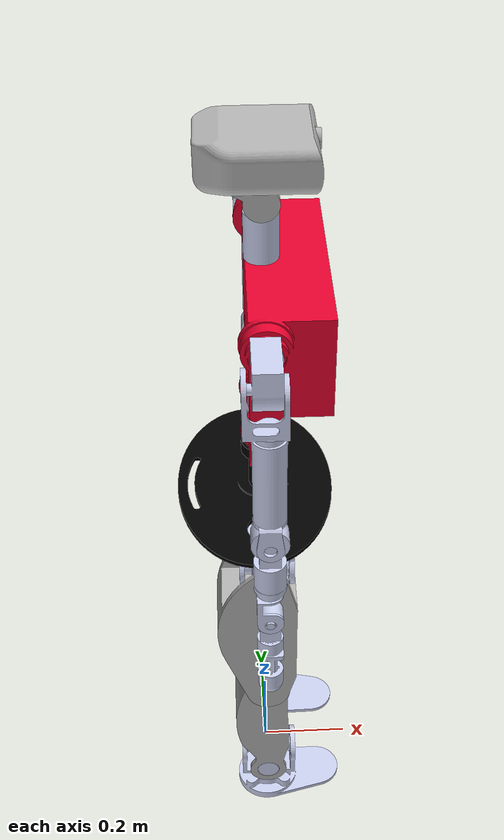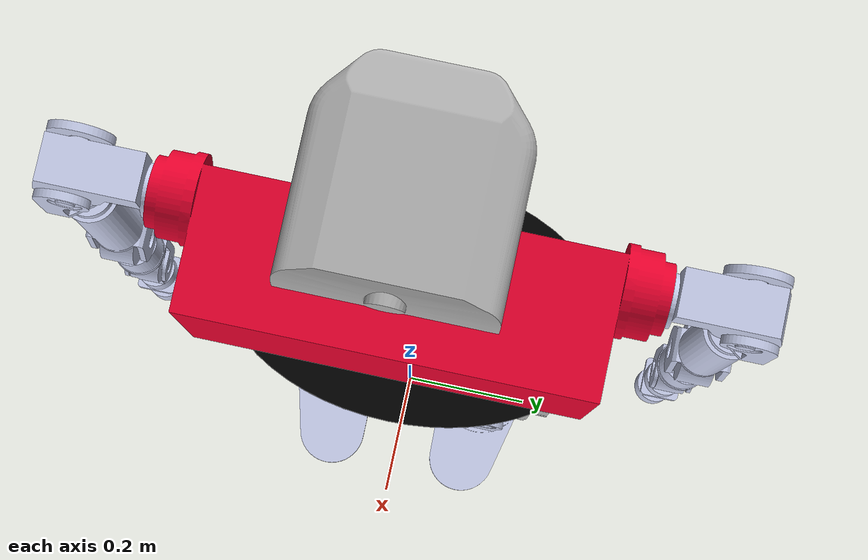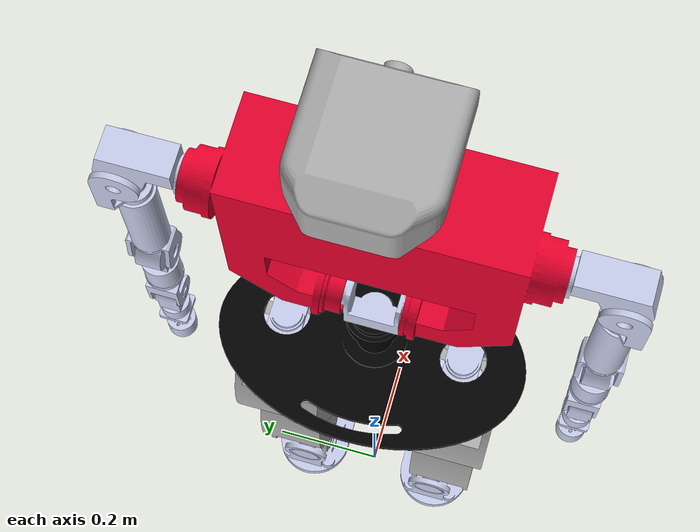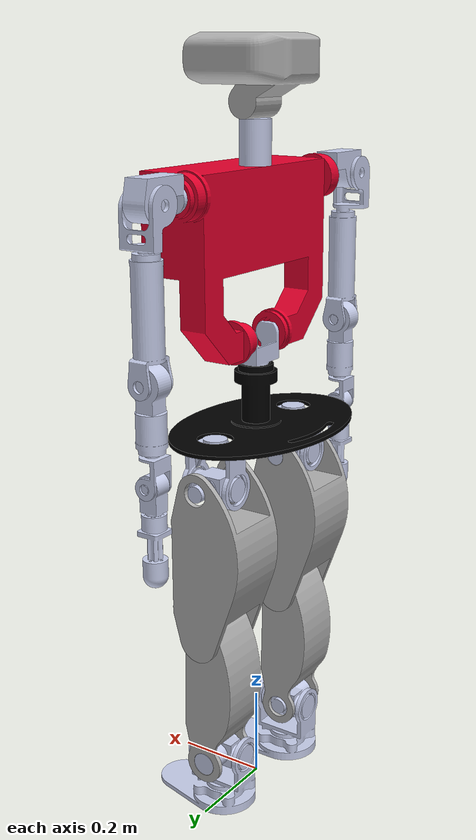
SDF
<?xml version="1.0"?>
<sdf version="1.7">
  <model name="TEO_stump">

    <include merge="true">
      <uri>model://teo</uri>
    </include>

    <include>
      <name>TEO_rightStump</name>
      <pose>0 -0.3465 0.7222 0 -0 0</pose>
      <uri>model://teo_stump/stump.sdf</uri>
    </include>

    <joint name="RightStump" type="fixed">
      <parent>RightSensorPlate_link</parent>
      <child>TEO_rightStump::Stump_link</child>
    </joint>

    <include>
      <name>TEO_leftStump</name>
      <pose>0 0.3465 0.7222 0 -0 0</pose>
      <uri>model://teo_stump/stump.sdf</uri>
    </include>

    <joint name="LeftStump" type="fixed">
      <parent>LeftSensorPlate_link</parent>
      <child>TEO_leftStump::Stump_link</child>
    </joint>

  </model>
</sdf>

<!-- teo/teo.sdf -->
<sdf version="1.7">
  <model name="TEO">

    <pose>0 0 0.845 0 -0 0</pose>

    <!-- ROOT -->

    <include merge="true">
      <uri>model://teo/parts/root.sdf</uri>
    </include>

    <joint name="AxialTrunk_adapter" type="fixed">
      <parent>RootWaist_links</parent>
      <child>AxialTrunk_link_adapter</child>
    </joint>

    <!-- TRUNK -->

    <include merge="true">
      <pose>0 0 0.1932 0 -0 0</pose>
      <uri>model://teo/parts/trunk.sdf</uri>
    </include>

    <!-- HEAD -->

    <include merge="true">
      <pose>0 0 0.6282 0 -0 0</pose>
      <uri>model://teo/parts/head.sdf</uri>
    </include>

    <joint name="AxialNeck_adapter" type="fixed">
      <parent>FrontalTrunk_link</parent>
      <child>AxialNeck_link_adapter</child>
    </joint>

    <!-- RIGHT ARM -->

    <include merge="true">
      <pose>0 -0.26292 0.4982 0 -0 0</pose>
      <uri>model://teo/parts/rightArm.sdf</uri>
    </include>

    <joint name="FrontalRightShoulder_adapter" type="fixed">
      <parent>FrontalTrunk_link</parent>
      <child>FrontalRightShoulder_link_adapter</child>
    </joint>

    <!-- LEFT ARM -->

    <include merge="true">
      <pose>0 0.26292 0.4982 0 -0 0</pose>
      <uri>model://teo/parts/leftArm.sdf</uri>
    </include>

    <joint name="FrontalLeftShoulder_adapter" type="fixed">
      <parent>FrontalTrunk_link</parent>
      <child>FrontalLeftShoulder_link_adapter</child>
    </joint>

    <!-- RIGHT LEG -->

    <include merge="true">
      <pose>0 -0.146 0 0 -0 0</pose>
      <uri>model://teo/parts/rightLeg.sdf</uri>
    </include>

    <joint name="AxialRightHip_adapter" type="fixed">
      <parent>RootWaist_links</parent>
      <child>AxialRightHip_link_adapter</child>
    </joint>

    <!-- LEFT LEG -->

    <include merge="true">
      <pose>0 0.146 0 0 -0 0</pose>
      <uri>model://teo/parts/leftLeg.sdf</uri>
    </include>

    <joint name="AxialLeftHip_adapter" type="fixed">
      <parent>RootWaist_links</parent>
      <child>AxialLeftHip_link_adapter</child>
    </joint>

    <plugin name="gz::sim::systems::SceneBroadcaster" filename="gz-sim-scene-broadcaster-system" />
    <plugin name="gz::sim::systems::Sensors" filename="gz-sim-sensors-system" />
    <plugin name="gz::sim::systems::ForceTorque" filename="gz-sim-forcetorque-system" />
    <plugin name="gz::sim::systems::Imu" filename="gz-sim-imu-system" />

    <plugin name="gzyarp::RobotInterface" filename="gz-sim-yarp-robotinterface-system">
      <yarpRobotInterfaceConfigurationFile>model://teo/conf/teo_nws_yarp.xml</yarpRobotInterfaceConfigurationFile>
    </plugin>

    <plugin name="gzyarp::RobotInterface" filename="gz-sim-yarp-robotinterface-system">
      <yarpRobotInterfaceConfigurationFile>model://teo/conf/teo_nws_ros2.xml</yarpRobotInterfaceConfigurationFile>
    </plugin>

  </model>
</sdf>

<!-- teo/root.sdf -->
<sdf version='1.7'>
<model name='TEO_root'>
  <link name='RootWaist_links'>
    <pose>0 0 0 0 -0 0</pose>
    <inertial>
      <pose>-0.010985 -0.000323 0.033148 0 -0 0</pose>
      <mass>2.5</mass>
      <inertia>
        <ixx>0.038530767</ixx>
        <ixy>-0.000000135</ixy>
        <ixz>0.000238121</ixz>
        <iyy>0.017354343</iyy>
        <iyz>-4.8e-10</iyz>
        <izz>0.053231634</izz>
      </inertia>
    </inertial>
    <visual name='RootWaist_links_visual'>
      <geometry>
        <mesh>
          <uri>model://teo/meshes/visual/RootWaist_links.dae</uri>
        </mesh>
      </geometry>
      <material>
        <ambient>0 0 0 1</ambient>
        <diffuse>0 0 0 1</diffuse>
        <specular>0 0 0 1</specular>
      </material>
    </visual>
    <collision name='RootWaist_links_collision'>
      <geometry>
        <mesh>
          <uri>model://teo/meshes/collision/RootWaist_links.stl</uri>
        </mesh>
      </geometry>
    </collision>
  </link>
</model>
</sdf>

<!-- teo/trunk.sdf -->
<sdf version="1.7">
  <model name="TEO">

    <link name="AxialTrunk_link_adapter"/>

    <link name="AxialTrunk_link">
      <pose>0 0 0 0 -0 0</pose>
      <inertial>
        <pose>-0.002235 -0.000979 -0.018814 0 -0 0</pose>
        <mass>1</mass>
        <inertia>
          <ixx>0.001977587</ixx>
          <ixy>0.00000206</ixy>
          <ixz>0.0000297</ixz>
          <iyy>0.000899729</iyy>
          <iyz>-0.00000307</iyz>
          <izz>0.001471749</izz>
        </inertia>
      </inertial>
      <visual name="AxialTrunk_visual">
        <geometry>
          <mesh>
            <uri>model://teo/meshes/visual/AxialWaist.dae</uri>
          </mesh>
        </geometry>
        <material>
          <ambient>0.792157 0.819608 0.933333 1</ambient>
          <diffuse>0.792157 0.819608 0.933333 1</diffuse>
          <specular>0.633726 0.655686 0.746667 1</specular>
        </material>
      </visual>
      <collision name="AxialTrunk_collision">
        <geometry>
          <mesh>
            <uri>model://teo/meshes/collision/AxialWaist.stl</uri>
          </mesh>
        </geometry>
      </collision>
    </link>

    <joint name="AxialTrunk" type="revolute">
      <parent>AxialTrunk_link_adapter</parent>
      <child>AxialTrunk_link</child>
      <axis>
        <xyz>0 0 1</xyz>
        <limit>
          <lower>-1.03</lower>
          <upper>0.81</upper>
        </limit>
        <dynamics>
          <damping>0.001</damping>
          <friction>0.7</friction>
        </dynamics>
      </axis>
    </joint>

    <link name="FrontalTrunk_link">
      <pose>0 0 0 0 -0 0</pose>
      <inertial>
        <pose>0.032985 -0.007876 0.220667 0 -0 0</pose>
        <mass>14.23545</mass>
        <inertia>
          <ixx>0.33566514</ixx>
          <ixy>0.000162127</ixy>
          <ixz>0.011858221</ixz>
          <iyy>0.126531585</iyy>
          <iyz>0.000914091</iyz>
          <izz>0.263359225</izz>
        </inertia>
      </inertial>
      <visual name="FrontalTrunk_visual">
        <geometry>
          <mesh>
            <uri>model://teo/meshes/visual/RootWaist.dae</uri>
          </mesh>
        </geometry>
        <material>
          <ambient>0.905882 0 0.172549 1</ambient>
          <diffuse>0.905882 0 0.172549 1</diffuse>
          <specular>0.452941 0 0.086275 1</specular>
        </material>
      </visual>
      <collision name="FrontalTrunk_collision">
        <geometry>
          <mesh>
            <uri>model://teo/meshes/collision/RootWaist.stl</uri>
          </mesh>
        </geometry>
      </collision>
      <sensor name="waist_imu" type="imu">
        <pose>0 0 0.05 0 3.14159 0</pose>
        <always_on>true</always_on>
        <update_rate>200</update_rate>
      </sensor>
    </link>

    <joint name="FrontalTrunk" type="revolute">
      <parent>AxialTrunk_link</parent>
      <child>FrontalTrunk_link</child>
      <axis>
        <xyz>0 1 0</xyz>
        <limit>
          <lower>-0.18</lower>
          <upper>1.58</upper>
        </limit>
        <dynamics>
          <damping>0.001</damping>
          <friction>0.7</friction>
        </dynamics>
      </axis>
    </joint>

    <plugin name="gzyarp::ControlBoard" filename="gz-sim-yarp-controlboard-system">
      <yarpConfigurationFile>model://teo/conf/gazebo_teo_trunk.ini</yarpConfigurationFile>
    </plugin>

    <plugin name="gzyarp::Imu" filename="gz-sim-yarp-imu-system">
      <yarpConfigurationFile>model://teo/conf/gazebo_teo_imu.ini</yarpConfigurationFile>
    </plugin>

  </model>
</sdf>

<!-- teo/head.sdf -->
<sdf version="1.7">
  <model name="TEO_head">

    <link name="AxialNeck_link_adapter"/>

    <link name="AxialNeck_link">
      <pose>0 0 0 0 -0 0</pose>
      <inertial>
        <pose>0.000302 0.000193 -0.0452 0 -0 0</pose>
        <mass>1</mass>
        <inertia>
          <ixx>0.000939063</ixx>
          <ixy>0</ixy>
          <ixz>0</ixz>
          <iyy>0.000939063</iyy>
          <iyz>0</iyz>
          <izz>0.000528125</izz>
        </inertia>
      </inertial>
      <visual name="AxialNeck_visual">
        <geometry>
          <mesh>
            <uri>model://teo/meshes/visual/AxialNeck.dae</uri>
          </mesh>
        </geometry>
        <material>
          <ambient>0.792157 0.819608 0.933333 1</ambient>
          <diffuse>0.792157 0.819608 0.933333 1</diffuse>
          <specular>0.633726 0.65568602 0.74666703 1</specular>
        </material>
      </visual>
      <collision name="AxialNeck_collision">
        <geometry>
          <mesh>
            <uri>model://teo/meshes/collision/AxialNeck.stl</uri>
          </mesh>
        </geometry>
      </collision>
    </link>

    <joint name="AxialNeck" type="revolute">
      <parent>AxialNeck_link_adapter</parent>
      <child>AxialNeck_link</child>
      <axis>
        <xyz>0 0 1</xyz>
        <limit>
          <lower>-1.22</lower>
          <upper>1.22</upper>
        </limit>
        <dynamics>
          <damping>0.001</damping>
          <friction>0.7</friction>
        </dynamics>
      </axis>
    </joint>

    <link name="FrontalNeck_link">
      <pose>0 0 0.0325 0 -0 0</pose>
      <inertial>
        <pose>-0.002729 -0.000086 0.067027 0 -0 0</pose>
        <mass>2</mass>
        <inertia>
          <ixx>0.007599322</ixx>
          <ixy>5.83e-09</ixy>
          <ixz>0.0000658</ixz>
          <iyy>0.008325273</iyy>
          <iyz>-7.43e-09</iyz>
          <izz>0.011403464</izz>
        </inertia>
      </inertial>
      <visual name="FrontalNeck_visual">
        <geometry>
          <mesh>
            <uri>model://teo/meshes/visual/FrontalNeck.dae</uri>
          </mesh>
        </geometry>
        <material>
          <ambient>1 1 1 1</ambient>
          <diffuse>0.7 0.7 0.7 1</diffuse>
          <specular>0.2 0.2 0.2 1</specular>
        </material>
      </visual>
      <collision name="FrontalNeck_collision">
        <geometry>
          <mesh>
            <uri>model://teo/meshes/collision/FrontalNeck.stl</uri>
          </mesh>
        </geometry>
      </collision>
      <sensor name="xtion_rgbd" type="rgbd_camera">
        <pose>0 0 0 0 -0 0</pose>
        <camera>
          <horizontal_fov>1.01</horizontal_fov>
          <image>
            <width>640</width>
            <height>480</height>
          </image>
          <clip>
            <near>0.2</near>
            <far>3.5</far>
          </clip>
          <lens>
            <intrinsics>
              <fx>525</fx>
              <fy>525</fy>
              <cx>319.5</cx>
              <cy>239.5</cy>
            </intrinsics>
          </lens>
        </camera>
        <always_on>1</always_on>
        <update_rate>30</update_rate>
        <visualize>1</visualize>
      </sensor>
    </link>

    <joint name="FrontalNeck" type="revolute">
      <parent>AxialNeck_link</parent>
      <child>FrontalNeck_link</child>
      <axis>
        <xyz>0 1 0</xyz>
        <limit>
          <lower>-0.51</lower>
          <upper>0.15</upper>
        </limit>
        <dynamics>
          <damping>0.001</damping>
          <friction>0.7</friction>
        </dynamics>
      </axis>
    </joint>

    <plugin name="gzyarp::ControlBoard" filename="gz-sim-yarp-controlboard-system">
      <yarpConfigurationFile>model://teo/conf/gazebo_teo_head.ini</yarpConfigurationFile>
    </plugin>

    <plugin name="gzyarp::DepthCamera" filename="gz-sim-yarp-depthcamera-system">
      <yarpConfigurationFile>model://teo/conf/gazebo_teo_rgbd.ini</yarpConfigurationFile>
    </plugin>

  </model>
</sdf>

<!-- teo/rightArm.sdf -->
<sdf version="1.7">
  <model name="TEO_rightArm">

    <link name="FrontalRightShoulder_link_adapter"/>

    <link name="FrontalRightShoulder_link">
      <pose>0 0 0 0 -0 0</pose>
      <inertial>
        <pose>-0.002267 -0.056164 0.008456 0 -0 0</pose>
        <mass>2</mass>
        <inertia>
          <ixx>0.004226791</ixx>
          <ixy>0.0000844</ixy>
          <ixz>-0.0000117</ixz>
          <iyy>0.002127281</iyy>
          <iyz>-0.000280493</iyz>
          <izz>0.004093161</izz>
        </inertia>
      </inertial>
      <visual name="FrontalRightShoulder_visual">
        <geometry>
          <mesh>
            <uri>model://teo/meshes/visual/FrontalRightShoulder.dae</uri>
          </mesh>
        </geometry>
        <material>
          <ambient>0.792157 0.819608 0.933333 1</ambient>
          <diffuse>0.792157 0.819608 0.933333 1</diffuse>
          <specular>0.633726 0.655686 0.746667 1</specular>
        </material>
      </visual>
      <collision name="FrontalRightShoulder_collision">
        <geometry>
          <mesh>
            <uri>model://teo/meshes/collision/FrontalRightShoulder.stl</uri>
          </mesh>
        </geometry>
      </collision>
    </link>

    <joint name="FrontalRightShoulder" type="revolute">
      <parent>FrontalRightShoulder_link_adapter</parent>
      <child>FrontalRightShoulder_link</child>
      <axis>
        <xyz>0 1 0</xyz>
        <limit>
          <lower>-1.71</lower>
          <upper>1.85</upper>
        </limit>
        <dynamics>
          <damping>0.001</damping>
          <friction>0.7</friction>
        </dynamics>
      </axis>
    </joint>

    <link name="SagittalRightShoulder_link">
      <pose>0 -0.084 0 0 -0 0</pose>
      <inertial>
        <pose>-0.008472 -0.004826 -0.027321 0 -0 0</pose>
        <mass>1</mass>
        <inertia>
          <ixx>0.001610932</ixx>
          <ixy>-0.000069</ixy>
          <ixz>-0.000214886</ixz>
          <iyy>0.002187776</iyy>
          <iyz>-0.000069</iyz>
          <izz>0.001173533</izz>
        </inertia>
      </inertial>
      <visual name="SagittalRightShoulder_visual">
        <geometry>
          <mesh>
            <uri>model://teo/meshes/visual/SagittalRightShoulder.dae</uri>
          </mesh>
        </geometry>
        <material>
          <ambient>0.792157 0.819608 0.933333 1</ambient>
          <diffuse>0.792157 0.819608 0.933333 1</diffuse>
          <specular>0.633726 0.655686 0.746667 1</specular>
        </material>
      </visual>
      <collision name="SagittalRightShoulder_collision">
        <geometry>
          <mesh>
            <uri>model://teo/meshes/collision/SagittalRightShoulder.stl</uri>
          </mesh>
        </geometry>
      </collision>
    </link>

    <joint name="SagittalRightShoulder" type="revolute">
      <parent>FrontalRightShoulder_link</parent>
      <child>SagittalRightShoulder_link</child>
      <axis>
        <xyz>1 0 0</xyz>
        <limit>
          <lower>-1.32</lower>
          <upper>0.39</upper>
        </limit>
        <dynamics>
          <damping>0.001</damping>
          <friction>0.7</friction>
        </dynamics>
      </axis>
    </joint>

    <link name="AxialRightShoulder_link">
      <pose>0 -0.084 -0.329 0 -0 0</pose>
      <inertial>
        <pose>0.000347 0.000245 0.107382 0 -0 0</pose>
        <mass>1</mass>
      </inertial>
      <visual name="AxialRightShoulder_visual">
        <geometry>
          <mesh>
            <uri>model://teo/meshes/visual/AxialRightShoulder.dae</uri>
          </mesh>
        </geometry>
        <material>
          <ambient>0.792157 0.819608 0.933333 1</ambient>
          <diffuse>0.792157 0.819608 0.933333 1</diffuse>
          <specular>0.633726 0.655686 0.746667 1</specular>
        </material>
      </visual>
      <collision name="AxialRightShoulder_collision">
        <geometry>
          <mesh>
            <uri>model://teo/meshes/collision/AxialRightShoulder.stl</uri>
          </mesh>
        </geometry>
      </collision>
    </link>

    <joint name="AxialRightShoulder" type="revolute">
      <parent>SagittalRightShoulder_link</parent>
      <child>AxialRightShoulder_link</child>
      <axis>
        <xyz>0 0 1</xyz>
        <limit>
          <lower>-1.4</lower>
          <upper>0.99</upper>
        </limit>
        <dynamics>
          <damping>0.001</damping>
          <friction>0.7</friction>
        </dynamics>
      </axis>
    </joint>

    <link name="FrontalRightElbow_link">
      <pose>0 -0.084 -0.329 0 -0 0</pose>
      <inertial>
        <pose>0.000237 -0.00004 -0.04998 0 -0 0</pose>
        <mass>1</mass>
        <inertia>
          <ixx>0.002590029</ixx>
          <ixy>0</ixy>
          <ixz>0</ixz>
          <iyy>0.00262307</iyy>
          <iyz>0</iyz>
          <izz>0.000446024</izz>
        </inertia>
      </inertial>
      <visual name="FrontalRightElbow_visual">
        <geometry>
          <mesh>
            <uri>model://teo/meshes/visual/FrontalRightElbow.dae</uri>
          </mesh>
        </geometry>
        <material>
          <ambient>0.792157 0.819608 0.933333 1</ambient>
          <diffuse>0.792157 0.819608 0.933333 1</diffuse>
          <specular>0.633726 0.655686 0.746667 1</specular>
        </material>
      </visual>
      <collision name="FrontalRightElbow_collision">
        <geometry>
          <mesh>
            <uri>model://teo/meshes/collision/FrontalRightElbow.stl</uri>
          </mesh>
        </geometry>
      </collision>
    </link>

    <joint name="FrontalRightElbow" type="revolute">
      <parent>AxialRightShoulder_link</parent>
      <child>FrontalRightElbow_link</child>
      <axis>
        <xyz>0 1 0</xyz>
        <limit>
          <lower>-1.74</lower>
          <upper>1.72</upper>
        </limit>
        <dynamics>
          <damping>0.001</damping>
          <friction>0.7</friction>
        </dynamics>
      </axis>
    </joint>

    <link name="AxialRightWrist_link">
      <pose>0 -0.084 -0.531 0 -0 0</pose>
      <inertial>
        <pose>-0.001151 0.000603 0.02464 0 -0 0</pose>
        <mass>0.63149</mass>
      </inertial>
      <visual name="AxialRightWrist_visual">
        <geometry>
          <mesh>
            <uri>model://teo/meshes/visual/AxialRightWrist.dae</uri>
          </mesh>
        </geometry>
        <material>
          <ambient>0.792157 0.819608 0.933333 1</ambient>
          <diffuse>0.792157 0.819608 0.933333 1</diffuse>
          <specular>0.633726 0.655686 0.746667 1</specular>
        </material>
      </visual>
      <collision name="AxialRightWrist_collision">
        <geometry>
          <mesh>
            <uri>model://teo/meshes/collision/AxialRightWrist.stl</uri>
          </mesh>
        </geometry>
      </collision>
    </link>

    <joint name="AxialRightWrist" type="revolute">
      <parent>FrontalRightElbow_link</parent>
      <child>AxialRightWrist_link</child>
      <axis>
        <xyz>0 0 1</xyz>
        <limit>
          <lower>-1.4</lower>
          <upper>1.74</upper>
        </limit>
        <dynamics>
          <damping>0.001</damping>
          <friction>0.7</friction>
        </dynamics>
      </axis>
    </joint>

    <link name="FrontalRightWrist_link">
      <pose>0 -0.084 -0.531 0 -0 0</pose>
      <inertial>
        <pose>-0.002314 0.00007 -0.108635 0 -0 0</pose>
        <mass>0.72</mass>
        <inertia>
          <ixx>0.005329957</ixx>
          <ixy>0.000000102</ixy>
          <ixz>0.000114751</ixz>
          <iyy>0.005345282</iyy>
          <iyz>-0.00000807</iyz>
          <izz>0.000883179</izz>
        </inertia>
      </inertial>
      <visual name="FrontalRightWrist_visual">
        <pose>0 0 0 -1.5708 0 0</pose>
        <geometry>
          <mesh>
            <scale>0.001 0.001 0.001</scale>
            <uri>model://teo/meshes/visual/FrontalRightWrist.dae</uri>
          </mesh>
        </geometry>
        <material>
          <ambient>0.792157 0.819608 0.933333 1</ambient>
          <diffuse>0.792157 0.819608 0.933333 1</diffuse>
          <specular>0.633726 0.655686 0.746667 1</specular>
        </material>
      </visual>
      <collision name="FrontalRightWrist_collision">
        <pose>0 0 0 -1.5708 0 0</pose>
        <geometry>
          <mesh>
            <scale>0.001 0.001 0.001</scale>
            <uri>model://teo/meshes/collision/FrontalRightWrist.stl</uri>
          </mesh>
        </geometry>
      </collision>
    </link>

    <joint name="FrontalRightWrist" type="revolute">
      <parent>AxialRightWrist_link</parent>
      <child>FrontalRightWrist_link</child>
      <axis>
        <xyz>0 1 0</xyz>
        <limit>
          <lower>-2.01</lower>
          <upper>0.78</upper>
        </limit>
        <dynamics>
          <damping>0.001</damping>
          <friction>0.7</friction>
        </dynamics>
      </axis>
    </joint>

    <link name="RightSensorPlate_link">
      <pose>0 -0.084 -0.63401 0 -0 0</pose>
      <inertial>
        <mass>0.001</mass> <!-- can"t be zero! -->
      </inertial>
    </link>

    <joint name="RightSensorPlate" type="fixed">
      <parent>FrontalRightWrist_link</parent>
      <child>RightSensorPlate_link</child>
      <pose>0 0 0 0 3.141593 0</pose>
      <sensor name="rightArm_ft" type="force_torque">
        <always_on>true</always_on>
        <update_rate>200</update_rate>
        <force_torque>
          <frame>sensor</frame>
          <measure_direction>child_to_parent</measure_direction>
        </force_torque>
      </sensor>
    </joint>

    <plugin name="gzyarp::ControlBoard" filename="gz-sim-yarp-controlboard-system">
      <yarpConfigurationFile>model://teo/conf/gazebo_teo_rightArm.ini</yarpConfigurationFile>
    </plugin>

    <plugin name="gzyarp::ForceTorque" filename="gz-sim-yarp-forcetorque-system">
      <yarpConfigurationFile>model://teo/conf/gazebo_teo_rightArm_ft.ini</yarpConfigurationFile>
    </plugin>

  </model>
</sdf>

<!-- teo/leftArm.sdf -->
<sdf version="1.7">
  <model name="TEO_leftArm">

    <link name="FrontalLeftShoulder_link_adapter"/>

    <link name="FrontalLeftShoulder_link">
      <pose>0 0 0 0 -0 0</pose>
      <inertial>
        <pose>-0.002272 0.056186 0.008165 0 -0 0</pose>
        <mass>2</mass>
        <inertia>
          <ixx>0.004226791</ixx>
          <ixy>-0.0000855</ixy>
          <ixz>-0.0000117</ixz>
          <iyy>0.00212734</iyy>
          <iyz>0.000280493</iyz>
          <izz>0.00409322</izz>
        </inertia>
      </inertial>
      <visual name="FrontalLeftShoulder_visual">
        <geometry>
          <mesh>
            <uri>model://teo/meshes/visual/FrontalLeftShoulder.dae</uri>
          </mesh>
        </geometry>
        <material>
          <ambient>0.792157 0.819608 0.933333 1</ambient>
          <diffuse>0.792157 0.819608 0.933333 1</diffuse>
          <specular>0.633726 0.655686 0.746667 1</specular>
        </material>
      </visual>
      <collision name="FrontalLeftShoulder_collision">
        <geometry>
          <mesh>
            <uri>model://teo/meshes/collision/FrontalLeftShoulder.stl</uri>
          </mesh>
        </geometry>
      </collision>
    </link>

    <joint name="FrontalLeftShoulder" type="revolute">
      <parent>FrontalLeftShoulder_link_adapter</parent>
      <child>FrontalLeftShoulder_link</child>
      <axis>
        <xyz>0 1 0</xyz>
        <limit>
          <lower>-1.69</lower>
          <upper>1.98</upper>
        </limit>
        <dynamics>
          <damping>0.001</damping>
          <friction>0.7</friction>
        </dynamics>
      </axis>
    </joint>

    <link name="SagittalLeftShoulder_link">
      <pose>0 0.084 0 0 -0 0</pose>
      <inertial>
        <pose>-0.008047 0.004937 -0.027619 0 -0 0</pose>
        <mass>1</mass>
        <inertia>
          <ixx>0.001610921</ixx>
          <ixy>0.000069</ixy>
          <ixz>-0.000214885</ixz>
          <iyy>0.002187768</iyy>
          <iyz>-0.000163004</iyz>
          <izz>0.001173531</izz>
        </inertia>
      </inertial>
      <visual name="SagittalLeftShoulder_visual">
        <geometry>
          <mesh>
            <uri>model://teo/meshes/visual/SagittalLeftShoulder.dae</uri>
          </mesh>
        </geometry>
        <material>
          <ambient>0.792157 0.819608 0.933333 1</ambient>
          <diffuse>0.792157 0.819608 0.933333 1</diffuse>
          <specular>0.633726 0.655686 0.746667 1</specular>
        </material>
      </visual>
      <collision name="SagittalLeftShoulder_collision">
        <geometry>
          <mesh>
            <uri>model://teo/meshes/collision/SagittalLeftShoulder.stl</uri>
          </mesh>
        </geometry>
      </collision>
    </link>

    <joint name="SagittalLeftShoulder" type="revolute">
      <parent>FrontalLeftShoulder_link</parent>
      <child>SagittalLeftShoulder_link</child>
      <axis>
        <xyz>1 0 0</xyz>
        <limit>
          <lower>-0.42</lower>
          <upper>1.34</upper>
        </limit>
        <dynamics>
          <damping>0.001</damping>
          <friction>0.7</friction>
        </dynamics>
      </axis>
    </joint>

    <link name="AxialLeftShoulder_link">
      <pose>0 0.084 -0.329 0 -0 0</pose>
      <inertial>
        <pose>-0.000172 0.000249 0.100649 0 -0 0</pose>
      </inertial>
      <visual name="AxialLeftShoulder_visual">
        <geometry>
          <mesh>
            <uri>model://teo/meshes/visual/AxialLeftShoulder.dae</uri>
          </mesh>
        </geometry>
        <material>
          <ambient>0.792157 0.819608 0.933333 1</ambient>
          <diffuse>0.792157 0.819608 0.933333 1</diffuse>
          <specular>0.633726 0.655686 0.746667 1</specular>
        </material>
      </visual>
      <collision name="AxialLeftShoulder_collision">
        <geometry>
          <mesh>
            <uri>model://teo/meshes/collision/AxialLeftShoulder.stl</uri>
          </mesh>
        </geometry>
      </collision>
    </link>

    <joint name="AxialLeftShoulder" type="revolute">
      <parent>SagittalLeftShoulder_link</parent>
      <child>AxialLeftShoulder_link</child>
      <axis>
        <xyz>0 0 1</xyz>
        <limit>
          <lower>-0.9</lower>
          <upper>1.47</upper>
        </limit>
        <dynamics>
          <damping>0.001</damping>
          <friction>0.7</friction>
        </dynamics>
      </axis>
    </joint>

    <link name="FrontalLeftElbow_link">
      <pose>0 0.084 -0.329 0 -0 0</pose>
      <inertial>
        <pose>0.000287 -0.000116 -0.053185 0 -0 0</pose>
        <mass>1</mass>
        <inertia>
          <ixx>0.002590029</ixx>
          <ixy>0</ixy>
          <ixz>0</ixz>
          <iyy>0.00262307</iyy>
          <iyz>0</iyz>
          <izz>0.000446024</izz>
        </inertia>
      </inertial>
      <visual name="FrontalLeftElbow_visual">
        <geometry>
          <mesh>
            <uri>model://teo/meshes/visual/FrontalLeftElbow.dae</uri>
          </mesh>
        </geometry>
        <material>
          <ambient>0.792157 0.819608 0.933333 1</ambient>
          <diffuse>0.792157 0.819608 0.933333 1</diffuse>
          <specular>0.633726 0.655686 0.746667 1</specular>
        </material>
      </visual>
      <collision name="FrontalLeftElbow_collision">
        <geometry>
          <mesh>
            <uri>model://teo/meshes/collision/FrontalLeftElbow.stl</uri>
          </mesh>
        </geometry>
      </collision>
    </link>

    <joint name="FrontalLeftElbow" type="revolute">
      <parent>AxialLeftShoulder_link</parent>
      <child>FrontalLeftElbow_link</child>
      <axis>
        <xyz>0 1 0</xyz>
        <limit>
          <lower>-1.76</lower>
          <upper>1.69</upper>
        </limit>
        <dynamics>
          <damping>0.001</damping>
          <friction>0.7</friction>
        </dynamics>
      </axis>
    </joint>

    <link name="AxialLeftWrist_link">
      <pose>0 0.084 -0.531 0 -0 0</pose>
      <inertial>
        <pose>-0.001151 0.000603 0.02464 0 -0 0</pose>
        <mass>0.63149</mass>
      </inertial>
      <visual name="AxialLeftWrist_visual">
        <geometry>
          <mesh>
            <uri>model://teo/meshes/visual/AxialLeftWrist.dae</uri>
          </mesh>
        </geometry>
        <material>
          <ambient>0.792157 0.819608 0.933333 1</ambient>
          <diffuse>0.792157 0.819608 0.933333 1</diffuse>
          <specular>0.633726 0.655686 0.746667 1</specular>
        </material>
      </visual>
      <collision name="AxialLeftWrist_collision">
        <geometry>
          <mesh>
            <uri>model://teo/meshes/collision/AxialLeftWrist.stl</uri>
          </mesh>
        </geometry>
      </collision>
    </link>

    <joint name="AxialLeftWrist" type="revolute">
      <parent>FrontalLeftElbow_link</parent>
      <child>AxialLeftWrist_link</child>
      <axis>
        <xyz>0 0 1</xyz>
        <limit>
          <lower>-1.77</lower>
          <upper>1.33</upper>
        </limit>
        <dynamics>
          <damping>0.001</damping>
          <friction>0.7</friction>
        </dynamics>
      </axis>
    </joint>

    <link name="FrontalLeftWrist_link">
      <pose>0 0.084 -0.531 0 -0 0</pose>
      <inertial>
        <pose>-0.002314 0.00007 -0.108635 0 -0 0</pose>
        <mass>0.72</mass>
        <inertia>
          <ixx>0.005330647</ixx>
          <ixy>0.000000128</ixy>
          <ixz>0.000100487</ixz>
          <iyy>0.005345282</iyy>
          <iyz>-0.00000807</iyz>
          <izz>0.000882489</izz>
        </inertia>
      </inertial>
      <visual name="FrontalLeftWrist_visual">
        <pose>0 0 0 -1.5708 0 0</pose>
        <geometry>
          <mesh>
            <scale>0.001 0.001 0.001</scale>
            <uri>model://teo/meshes/visual/FrontalLeftWrist.dae</uri>
          </mesh>
        </geometry>
        <material>
          <ambient>0.792157 0.819608 0.933333 1</ambient>
          <diffuse>0.792157 0.819608 0.933333 1</diffuse>
          <specular>0.633726 0.655686 0.746667 1</specular>
        </material>
      </visual>
      <collision name="FrontalLeftWrist_collision">
        <pose>0 0 0 -1.5708 0 0</pose>
        <geometry>
          <mesh>
            <scale>0.001 0.001 0.001</scale>
            <uri>model://teo/meshes/collision/FrontalLeftWrist.stl</uri>
          </mesh>
        </geometry>
      </collision>
    </link>

    <joint name="FrontalLeftWrist" type="revolute">
      <parent>AxialLeftWrist_link</parent>
      <child>FrontalLeftWrist_link</child>
      <axis>
        <xyz>0 1 0</xyz>
        <limit>
          <lower>-1.98</lower>
          <upper>1.07</upper>
        </limit>
        <dynamics>
          <damping>0.001</damping>
          <friction>0.7</friction>
        </dynamics>
      </axis>
    </joint>

    <link name="LeftSensorPlate_link">
      <pose>0 0.084 -0.63401 0 -0 0</pose>
      <inertial>
        <mass>0.001</mass> <!-- can"t be zero! -->
      </inertial>
    </link>

    <joint name="LeftSensorPlate" type="fixed">
      <parent>FrontalLeftWrist_link</parent>
      <child>LeftSensorPlate_link</child>
      <pose>0 0 0 0 3.141593 0</pose>
      <sensor name="leftArm_ft" type="force_torque">
        <always_on>true</always_on>
        <update_rate>200</update_rate>
        <force_torque>
          <frame>sensor</frame>
          <measure_direction>child_to_parent</measure_direction>
        </force_torque>
      </sensor>
    </joint>

    <plugin name="gzyarp::ControlBoard" filename="gz-sim-yarp-controlboard-system">
      <yarpConfigurationFile>model://teo/conf/gazebo_teo_leftArm.ini</yarpConfigurationFile>
    </plugin>

    <plugin name="gzyarp::ForceTorque" filename="gz-sim-yarp-forcetorque-system">
      <yarpConfigurationFile>model://teo/conf/gazebo_teo_leftArm_ft.ini</yarpConfigurationFile>
    </plugin>

  </model>
</sdf>

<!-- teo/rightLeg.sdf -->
<sdf version="1.7">
  <model name="TEO_rightLeg">

    <link name="AxialRightHip_link_adapter"/>

    <link name="AxialRightHip_link">
      <pose>0 0 0 0 -0 0</pose>
      <inertial>
        <pose>0.000089 -0.000389 -0.065985 0 -0 0</pose>
        <mass>0.84945</mass>
        <inertia>
          <ixx>0.001564202</ixx>
          <ixy>0</ixy>
          <ixz>0.0000025</ixz>
          <iyy>0.002645089</iyy>
          <iyz>0</iyz>
          <izz>0.001706349</izz>
        </inertia>
      </inertial>
      <visual name="AxialRightHip_visual">
        <geometry>
          <mesh>
            <uri>model://teo/meshes/visual/AxialRightHip.dae</uri>
          </mesh>
        </geometry>
        <material>
          <ambient>0.792157 0.819608 0.933333 1</ambient>
          <diffuse>0.792157 0.819608 0.933333 1</diffuse>
          <specular>0.633726 0.655686 0.746667 1</specular>
        </material>
      </visual>
      <collision name="AxialRightHip_collision">
        <geometry>
          <mesh>
            <uri>model://teo/meshes/collision/AxialRightHip.stl</uri>
          </mesh>
        </geometry>
      </collision>
    </link>

    <joint name="AxialRightHip" type="revolute">
      <parent>AxialRightHip_link_adapter</parent>
      <child>AxialRightHip_link</child>
      <axis>
        <xyz>0 0 1</xyz>
        <limit>
          <lower>-0.57</lower>
          <upper>0.49</upper>
        </limit>
        <dynamics>
          <damping>0.001</damping>
          <friction>0.7</friction>
        </dynamics>
      </axis>
    </joint>

    <link name="SagittalRightHip_link">
      <pose>0 0 -0.092 0 -0 0</pose>
      <inertial>
        <pose>-0.000636 0.001058 0.000349 0 -0 0</pose>
        <mass>1.45459</mass>
        <inertia>
          <ixx>0.001545815</ixx>
          <ixy>-0.00000297</ixy>
          <ixz>-4.07e-09</ixz>
          <iyy>0.00119159</iyy>
          <iyz>9.16e-09</iyz>
          <izz>0.002270482</izz>
        </inertia>
      </inertial>
      <visual name="SagittalRightHip_visual">
        <geometry>
          <mesh>
            <uri>model://teo/meshes/visual/SagittalRightHip.dae</uri>
          </mesh>
        </geometry>
        <material>
          <ambient>0.792157 0.819608 0.933333 1</ambient>
          <diffuse>0.792157 0.819608 0.933333 1</diffuse>
          <specular>0.633726 0.655686 0.746667 1</specular>
        </material>
      </visual>
      <collision name="SagittalRightHip_collision">
        <geometry>
          <mesh>
            <uri>model://teo/meshes/collision/SagittalRightHip.stl</uri>
          </mesh>
        </geometry>
      </collision>
    </link>

    <joint name="SagittalRightHip" type="revolute">
      <parent>AxialRightHip_link</parent>
      <child>SagittalRightHip_link</child>
      <axis>
        <xyz>1 0 0</xyz>
        <limit>
          <lower>-0.25</lower>
          <upper>0.22</upper>
        </limit>
        <dynamics>
          <damping>0.001</damping>
          <friction>0.7</friction>
        </dynamics>
      </axis>
    </joint>

    <link name="FrontalRightHip_link">
      <pose>0 0 -0.092 0 -0 0</pose>
      <inertial>
        <pose>-0.010862 -0.000006 -0.161205 0 -0 0</pose>
        <mass>1.89152</mass>
        <inertia>
          <ixx>0.015077735</ixx>
          <ixy>0</ixy>
          <ixz>-0.000442074</ixz>
          <iyy>0.015112044</iyy>
          <iyz>0</iyz>
          <izz>0.00747346</izz>
        </inertia>
      </inertial>
      <visual name="FrontalRightHip_visual">
        <geometry>
          <mesh>
            <uri>model://teo/meshes/visual/FrontalRightHip.dae</uri>
          </mesh>
        </geometry>
        <material>
          <ambient>1 1 1 1</ambient>
          <diffuse>0.7 0.7 0.7 1</diffuse>
          <specular>0.2 0.2 0.2 1</specular>
        </material>
      </visual>
      <collision name="FrontalRightHip_collision">
        <geometry>
          <mesh>
            <uri>model://teo/meshes/collision/FrontalRightHip.stl</uri>
          </mesh>
        </geometry>
      </collision>
    </link>

    <joint name="FrontalRightHip" type="revolute">
      <parent>SagittalRightHip_link</parent>
      <child>FrontalRightHip_link</child>
      <axis>
        <xyz>0 1 0</xyz>
        <limit>
          <lower>-0.55</lower>
          <upper>0.74</upper>
        </limit>
        <dynamics>
          <damping>0.001</damping>
          <friction>0.7</friction>
        </dynamics>
      </axis>
    </joint>

    <link name="FrontalRightKnee_link">
      <pose>0 0 -0.422 0 -0 0</pose>
      <inertial>
        <pose>-0.006614 -0.000411 -0.146413 0 -0 0</pose>
        <mass>1.94824</mass>
        <inertia>
          <ixx>0.02186171</ixx>
          <ixy>0</ixy>
          <ixz>0.00000316</ixz>
          <iyy>0.021411109</iyy>
          <iyz>0</iyz>
          <izz>0.003843636</izz>
        </inertia>
      </inertial>
      <visual name="FrontalRightKnee_visual">
        <geometry>
          <mesh>
            <uri>model://teo/meshes/visual/FrontalRightKnee.dae</uri>
          </mesh>
        </geometry>
        <material>
          <ambient>1 1 1 1</ambient>
          <diffuse>0.7 0.7 0.7 1</diffuse>
          <specular>0.2 0.2 0.2 1</specular>
        </material>
      </visual>
      <collision name="FrontalRightKnee_collision">
        <geometry>
          <mesh>
            <uri>model://teo/meshes/collision/FrontalRightKnee.stl</uri>
          </mesh>
        </geometry>
      </collision>
    </link>

    <joint name="FrontalRightKnee" type="revolute">
      <parent>FrontalRightHip_link</parent>
      <child>FrontalRightKnee_link</child>
      <axis>
        <xyz>0 1 0</xyz>
        <limit>
          <lower>-1.07</lower>
          <upper>1.44</upper>
        </limit>
        <dynamics>
          <damping>0.001</damping>
          <friction>0.7</friction>
        </dynamics>
      </axis>
    </joint>

    <link name="FrontalRightAnkle_link">
      <pose>0 0.0175 -0.722 0 -0 0</pose>
      <inertial>
        <pose>0.002577 -0.013536 0.000182 0 -0 0</pose>
        <mass>1.50359</mass>
        <inertia>
          <ixx>0.001395488</ixx>
          <ixy>0.00000685</ixy>
          <ixz>1e-11</ixz>
          <iyy>0.001589358</iyy>
          <iyz>0</iyz>
          <izz>0.002418657</izz>
        </inertia>
      </inertial>
      <visual name="FrontalRightAnkle_visual">
        <geometry>
          <mesh>
            <uri>model://teo/meshes/visual/FrontalRightAnkle.dae</uri>
          </mesh>
        </geometry>
        <material>
          <ambient>0.792157 0.819608 0.933333 1</ambient>
          <diffuse>0.792157 0.819608 0.933333 1</diffuse>
          <specular>0.633726 0.655686 0.746667 1</specular>
        </material>
      </visual>
      <collision name="FrontalRightAnkle_collision">
        <geometry>
          <mesh>
            <uri>model://teo/meshes/collision/FrontalRightAnkle.stl</uri>
          </mesh>
        </geometry>
      </collision>
    </link>

    <joint name="FrontalRightAnkle" type="revolute">
      <parent>FrontalRightKnee_link</parent>
      <child>FrontalRightAnkle_link</child>
      <axis>
        <xyz>0 1 0</xyz>
        <limit>
          <lower>-0.4</lower>
          <upper>0.44</upper>
        </limit>
        <dynamics>
          <damping>0.001</damping>
          <friction>0.7</friction>
        </dynamics>
      </axis>
    </joint>

    <link name="SagittalRightAnkle_link">
      <pose>0 0.0175 -0.722 0 -0 0</pose>
      <inertial>
        <pose>0.01003 0.000936 -0.0669 0 -0 0</pose>
        <mass>2.1334</mass>
        <inertia>
          <ixx>0.00774203</ixx>
          <ixy>0.000455866</ixy>
          <ixz>-0.001851657</ixz>
          <iyy>0.014781323</iyy>
          <iyz>-0.000147513</iyz>
          <izz>0.013361748</izz>
        </inertia>
      </inertial>
      <visual name="FrontalRightAnkle_visual">
        <geometry>
          <mesh>
            <uri>model://teo/meshes/visual/SagittalRightAnkle.dae</uri>
          </mesh>
        </geometry>
        <material>
          <ambient>0.792157 0.819608 0.933333 1</ambient>
          <diffuse>0.792157 0.819608 0.933333 1</diffuse>
          <specular>0.633726 0.655686 0.746667 1</specular>
        </material>
      </visual>
      <collision name="SagittalRightAnkle_collision">
        <geometry>
          <mesh>
            <uri>model://teo/meshes/collision/SagittalRightAnkle.stl</uri>
          </mesh>
        </geometry>
      </collision>
    </link>

    <joint name="SagittalRightAnkle" type="revolute">
      <parent>FrontalRightAnkle_link</parent>
      <child>SagittalRightAnkle_link</child>
      <axis>
        <xyz>1 0 0</xyz>
        <limit>
          <lower>-0.35</lower>
          <upper>0.74</upper>
        </limit>
        <dynamics>
          <damping>0.001</damping>
          <friction>0.7</friction>
        </dynamics>
      </axis>
    </joint>

    <link name="SagittalRightFoot_link">
      <pose>0 0.0175 -0.722 0 -0 0</pose>
      <inertial>
        <pose>0.01003 0.000936 -0.0669 0 -0 0</pose>
        <mass>1.0</mass>
        <inertia>
          <ixx>0.00774203</ixx>
          <ixy>0.000455866</ixy>
          <ixz>-0.001851657</ixz>
          <iyy>0.014781323</iyy>
          <iyz>-0.000147513</iyz>
          <izz>0.013361748</izz>
        </inertia>
      </inertial>
      <visual name="FrontalRightFoot_visual">
        <geometry>
          <mesh>
            <uri>model://teo/meshes/visual/SagittalRightFoot.dae</uri>
          </mesh>
        </geometry>
        <material>
          <ambient>0.792157 0.819608 0.933333 1</ambient>
          <diffuse>0.792157 0.819608 0.933333 1</diffuse>
          <specular>0.633726 0.655686 0.746667 1</specular>
        </material>
      </visual>
      <collision name="SagittalRightFoot_collision">
        <geometry>
          <mesh>
            <uri>model://teo/meshes/collision/SagittalRightFoot.stl</uri>
          </mesh>
        </geometry>
        <max_contacts>4</max_contacts>
        <surface>
          <contact>
            <ode>
              <kp>18000000</kp>
              <kd>100</kd>
              <max_vel>100</max_vel>
              <min_depth>0.0001</min_depth>
            </ode>
          </contact>
          <friction>
            <ode/>
          </friction>
        </surface>
      </collision>
    </link>

    <joint name="SagittalRightFoot" type="fixed">
      <parent>SagittalRightAnkle_link</parent>
      <child>SagittalRightFoot_link</child>
      <pose>0 0 -0.113 3.141593 0 0</pose>
      <sensor name="rightLeg_ft" type="force_torque">
        <always_on>true</always_on>
        <update_rate>200</update_rate>
        <force_torque>
          <frame>sensor</frame>
          <measure_direction>child_to_parent</measure_direction>
        </force_torque>
      </sensor>
    </joint>

    <plugin name="gzyarp::ControlBoard" filename="gz-sim-yarp-controlboard-system">
      <yarpConfigurationFile>model://teo/conf/gazebo_teo_rightLeg.ini</yarpConfigurationFile>
    </plugin>

    <plugin name="gzyarp::ForceTorque" filename="gz-sim-yarp-forcetorque-system">
      <yarpConfigurationFile>model://teo/conf/gazebo_teo_rightLeg_ft.ini</yarpConfigurationFile>
    </plugin>

  </model>
</sdf>

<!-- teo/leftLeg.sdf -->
<sdf version='1.7'>
  <model name='TEO_leftLeg'>

    <link name='AxialLeftHip_link_adapter'/>

    <link name='AxialLeftHip_link'>
      <pose>0 0 0 0 -0 0</pose>
      <inertial>
        <pose>0.000089 -0.000389 -0.065985 0 -0 0</pose>
        <mass>0.84945</mass>
        <inertia>
          <ixx>0.001564202</ixx>
          <ixy>0.0000025</ixy>
          <ixz>0</ixz>
          <iyy>0.002645089</iyy>
          <iyz>0</iyz>
          <izz>0.001706349</izz>
        </inertia>
      </inertial>
      <visual name='AxialLeftHip_visual'>
        <geometry>
          <mesh>
            <uri>model://teo/meshes/visual/AxialLeftHip.dae</uri>
          </mesh>
        </geometry>
        <material>
          <ambient>0.792157 0.819608 0.933333 1</ambient>
          <diffuse>0.792157 0.819608 0.933333 1</diffuse>
          <specular>0.633726 0.655686 0.746667 1</specular>
        </material>
      </visual>
      <collision name='AxialLeftHip_collision'>
        <geometry>
          <mesh>
            <uri>model://teo/meshes/collision/AxialLeftHip.stl</uri>
          </mesh>
        </geometry>
      </collision>
    </link>

    <joint name='AxialLeftHip' type='revolute'>
      <parent>AxialLeftHip_link_adapter</parent>
      <child>AxialLeftHip_link</child>
      <axis>
        <xyz>0 0 1</xyz>
        <limit>
          <lower>-0.49</lower>
          <upper>0.57</upper>
        </limit>
        <dynamics>
          <damping>0.001</damping>
          <friction>0.7</friction>
        </dynamics>
      </axis>
    </joint>

    <link name='SagittalLeftHip_link'>
      <pose>0 0 -0.092 0 -0 0</pose>
      <inertial>
        <pose>-0.00011 -0.000988 0.000214 0 -0 0</pose>
        <mass>1.45459</mass>
        <inertia>
          <ixx>0.001545815</ixx>
          <ixy>-0.00000297</ixy>
          <ixz>-4.07e-09</ixz>
          <iyy>0.00119159</iyy>
          <iyz>9.16e-09</iyz>
          <izz>0.002270482</izz>
        </inertia>
      </inertial>
      <visual name='SagittalLeftHip_visual'>
        <geometry>
          <mesh>
            <uri>model://teo/meshes/visual/SagittalLeftHip.dae</uri>
          </mesh>
        </geometry>
        <material>
          <ambient>0.792157 0.819608 0.933333 1</ambient>
          <diffuse>0.792157 0.819608 0.933333 1</diffuse>
          <specular>0.633726 0.655686 0.746667 1</specular>
        </material>
      </visual>
      <collision name='SagittalLeftHip_collision'>
        <geometry>
          <mesh>
            <uri>model://teo/meshes/collision/SagittalLeftHip.stl</uri>
          </mesh>
        </geometry>
      </collision>
    </link>

    <joint name='SagittalLeftHip' type='revolute'>
      <parent>AxialLeftHip_link</parent>
      <child>SagittalLeftHip_link</child>
      <axis>
        <xyz>1 0 0</xyz>
        <limit>
          <lower>-0.22</lower>
          <upper>0.25</upper>
        </limit>
        <dynamics>
          <damping>0.001</damping>
          <friction>0.7</friction>
        </dynamics>
      </axis>
    </joint>

    <link name='FrontalLeftHip_link'>
      <pose>0 0 -0.092 0 -0 0</pose>
      <inertial>
        <pose>-0.010862 -0.000006 -0.161205 0 -0 0</pose>
        <mass>1.89152</mass>
        <inertia>
          <ixx>0.015077735</ixx>
          <ixy>0</ixy>
          <ixz>-0.000442074</ixz>
          <iyy>0.015112044</iyy>
          <iyz>0</iyz>
          <izz>0.00747346</izz>
        </inertia>
      </inertial>
      <visual name='FrontalLeftHip_visual'>
        <geometry>
          <mesh>
            <uri>model://teo/meshes/visual/FrontalLeftHip.dae</uri>
          </mesh>
        </geometry>
        <material>
          <ambient>1 1 1 1</ambient>
          <diffuse>0.7 0.7 0.7 1</diffuse>
          <specular>0.2 0.2 0.2 1</specular>
        </material>
      </visual>
      <collision name='FrontalLeftHip_collision'>
        <geometry>
          <mesh>
            <uri>model://teo/meshes/collision/FrontalLeftHip.stl</uri>
          </mesh>
        </geometry>
      </collision>
    </link>

    <joint name='FrontalLeftHip' type='revolute'>
      <parent>SagittalLeftHip_link</parent>
      <child>FrontalLeftHip_link</child>
      <axis>
        <xyz>0 1 0</xyz>
        <limit>
          <lower>-0.55</lower>
          <upper>0.74</upper>
        </limit>
        <dynamics>
          <damping>0.001</damping>
          <friction>0.7</friction>
        </dynamics>
      </axis>
    </joint>

    <link name='FrontalLeftKnee_link'>
      <pose>0 0 -0.422 0 -0 0</pose>
      <inertial>
        <pose>-0.006614 -0.000411 -0.146413 0 -0 0</pose>
        <mass>1.94824</mass>
        <inertia>
          <ixx>0.02186171</ixx>
          <ixy>0</ixy>
          <ixz>0.00000316</ixz>
          <iyy>0.021411109</iyy>
          <iyz>0</iyz>
          <izz>0.003843636</izz>
        </inertia>
      </inertial>
      <visual name='FrontalLeftKnee_visual'>
        <geometry>
          <mesh>
            <uri>model://teo/meshes/visual/FrontalLeftKnee.dae</uri>
          </mesh>
        </geometry>
        <material>
          <ambient>1 1 1 1</ambient>
          <diffuse>0.7 0.7 0.7 1</diffuse>
          <specular>0.2 0.2 0.2 1</specular>
        </material>
      </visual>
      <collision name='FrontalLeftKnee_collision'>
        <geometry>
          <mesh>
            <uri>model://teo/meshes/collision/FrontalLeftKnee.stl</uri>
          </mesh>
        </geometry>
      </collision>
    </link>

    <joint name='FrontalLeftKnee' type='revolute'>
      <parent>FrontalLeftHip_link</parent>
      <child>FrontalLeftKnee_link</child>
      <axis>
        <xyz>0 1 0</xyz>
        <limit>
          <lower>-1.07</lower>
          <upper>1.44</upper>
        </limit>
        <dynamics>
          <damping>0.001</damping>
          <friction>0.7</friction>
        </dynamics>
      </axis>
    </joint>

    <link name='FrontalLeftAnkle_link'>
      <pose>0 -0.0175 -0.722 0 -0 0</pose>
      <inertial>
        <pose>0.001999 0.013793 0.000035 0 -0 0</pose>
        <mass>1.50359</mass>
        <inertia>
          <ixx>0.001392287</ixx>
          <ixy>-0.0000121</ixy>
          <ixz>1e-11</ixz>
          <iyy>0.001590045</iyy>
          <iyz>1e-11</iyz>
          <izz>0.00241606</izz>
        </inertia>
      </inertial>
      <visual name='FrontalLeftAnkle_visual'>
        <geometry>
          <mesh>
            <uri>model://teo/meshes/visual/FrontalLeftAnkle.dae</uri>
          </mesh>
        </geometry>
        <material>
          <ambient>0.792157 0.819608 0.933333 1</ambient>
          <diffuse>0.792157 0.819608 0.933333 1</diffuse>
          <specular>0.633726 0.655686 0.746667 1</specular>
        </material>
      </visual>
      <collision name='FrontalLeftAnkle_collision'>
        <geometry>
          <mesh>
            <uri>model://teo/meshes/collision/FrontalLeftAnkle.stl</uri>
          </mesh>
        </geometry>
      </collision>
    </link>

    <joint name='FrontalLeftAnkle' type='revolute'>
      <parent>FrontalLeftKnee_link</parent>
      <child>FrontalLeftAnkle_link</child>
      <axis>
        <xyz>0 1 0</xyz>
        <limit>
          <lower>-0.4</lower>
          <upper>0.44</upper>
        </limit>
        <dynamics>
          <damping>0.001</damping>
          <friction>0.7</friction>
        </dynamics>
      </axis>
    </joint>

    <link name='SagittalLeftAnkle_link'>
      <pose>0 -0.0175 -0.722 0 -0 0</pose>
      <inertial>
        <pose>0.010136 -0.000799 -0.0669 0 -0 0</pose>
        <mass>2.1334</mass>
        <inertia>
          <ixx>0.007763728</ixx>
          <ixy>-0.000524258</ixy>
          <ixz>-0.001424772</ixz>
          <iyy>0.014591641</iyy>
          <iyz>0.000173925</iyz>
          <izz>0.013164253</izz>
        </inertia>
      </inertial>
      <visual name='SagittalLeftAnkle_visual'>
        <geometry>
          <mesh>
            <uri>model://teo/meshes/visual/SagittalLeftAnkle.dae</uri>
          </mesh>
        </geometry>
        <material>
          <ambient>0.792157 0.819608 0.933333 1</ambient>
          <diffuse>0.792157 0.819608 0.933333 1</diffuse>
          <specular>0.633726 0.655686 0.746667 1</specular>
        </material>
      </visual>
      <collision name='SagittalLeftAnkle_collision'>
        <geometry>
          <mesh>
            <uri>model://teo/meshes/collision/SagittalLeftAnkle.stl</uri>
          </mesh>
        </geometry>
      </collision>
    </link>

    <joint name='SagittalLeftAnkle' type='revolute'>
      <parent>FrontalLeftAnkle_link</parent>
      <child>SagittalLeftAnkle_link</child>
      <axis>
        <xyz>1 0 0</xyz>
        <limit>
          <lower>-0.74</lower>
          <upper>0.35</upper>
        </limit>
        <dynamics>
          <damping>0.001</damping>
          <friction>0.7</friction>
        </dynamics>
      </axis>
    </joint>

    <link name='SagittalLeftFoot_link'>
      <pose>0 -0.0175 -0.722 0 -0 0</pose>
      <inertial>
        <pose>0.010136 -0.000799 -0.0669 0 -0 0</pose>
        <mass>1.0</mass>
        <inertia>
          <ixx>0.007763728</ixx>
          <ixy>-0.000524258</ixy>
          <ixz>-0.001424772</ixz>
          <iyy>0.014591641</iyy>
          <iyz>0.000173925</iyz>
          <izz>0.013164253</izz>
        </inertia>
      </inertial>
      <visual name='SagittalLeftFoot_visual'>
        <geometry>
          <mesh>
            <uri>model://teo/meshes/visual/SagittalLeftFoot.dae</uri>
          </mesh>
        </geometry>
        <material>
          <ambient>0.792157 0.819608 0.933333 1</ambient>
          <diffuse>0.792157 0.819608 0.933333 1</diffuse>
          <specular>0.633726 0.655686 0.746667 1</specular>
        </material>
      </visual>
      <collision name='SagittalLeftFoot_collision'>
        <geometry>
          <mesh>
            <uri>model://teo/meshes/collision/SagittalLeftFoot.stl</uri>
          </mesh>
        </geometry>
        <max_contacts>4</max_contacts>
        <surface>
          <contact>
            <ode>
              <kp>18000000</kp>
              <kd>100</kd>
              <max_vel>100</max_vel>
              <min_depth>0.0001</min_depth>
            </ode>
          </contact>
          <friction>
            <ode/>
          </friction>
        </surface>
      </collision>
    </link>

    <joint name='SagittalLeftFoot' type='fixed'>
      <parent>SagittalLeftAnkle_link</parent>
      <child>SagittalLeftFoot_link</child>
      <pose>0 0 -0.113 3.141593 0 0</pose>
      <sensor name="leftLeg_ft" type="force_torque">
        <always_on>true</always_on>
        <update_rate>200</update_rate>
        <force_torque>
          <frame>sensor</frame>
          <measure_direction>child_to_parent</measure_direction>
        </force_torque>
      </sensor>
    </joint>

    <plugin name='gzyarp::ControlBoard' filename='gz-sim-yarp-controlboard-system'>
      <yarpConfigurationFile>model://teo/conf/gazebo_teo_leftLeg.ini</yarpConfigurationFile>
    </plugin>

    <plugin name='gzyarp::ForceTorque' filename='gz-sim-yarp-forcetorque-system'>
      <yarpConfigurationFile>model://teo/conf/gazebo_teo_leftLeg_ft.ini</yarpConfigurationFile>
    </plugin>

  </model>
</sdf>

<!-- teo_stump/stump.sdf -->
<sdf version="1.7">
  <model name="TEO_stump">
    <link name="Stump_link">
      <pose>0 0 0 -1.5708 0 0</pose>
      <inertial>
        <pose>-0.0000 -0.0000 -0.0 0 -0 0</pose>
        <mass>0.1</mass>
        <inertia>
          <ixx>0.005330647</ixx>
          <ixy>0.000000128</ixy>
          <ixz>0.000100487</ixz>
          <iyy>0.005345282</iyy>
          <iyz>-0.00000807</iyz>
          <izz>0.000882489</izz>
        </inertia>
      </inertial>
      <visual name="Stump_visual">
        <pose>-0.025 -0.0 -0.07 0 -0 0</pose>
        <geometry>
          <mesh>
            <uri>model://teo_stump/Stump.stl</uri>
          </mesh>
        </geometry>
        <material>
          <ambient>0.792157 0.819608 0.933333 1</ambient>
          <diffuse>0.792157 0.819608 0.933333 1</diffuse>
          <specular>0.633726 0.655686 0.746667 1</specular>
        </material>
      </visual>
      <collision name="Stump_collision">
        <pose>-0.025 -0.0 -0.075 0 -0 0</pose>
        <geometry>
          <mesh>
            <uri>model://teo_stump/Stump.stl</uri>
          </mesh>
        </geometry>
      </collision>
    </link>
  </model>
</sdf>
